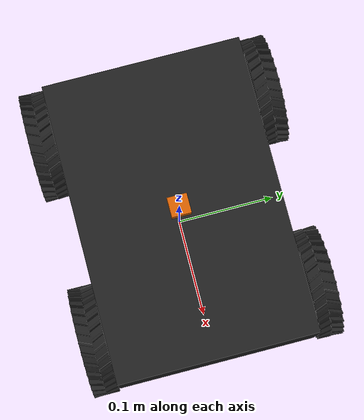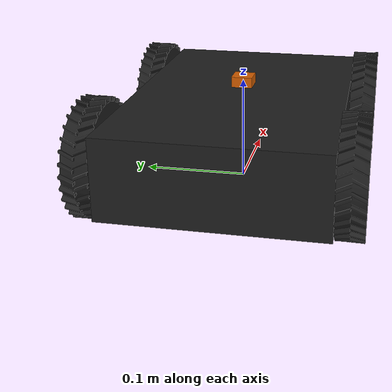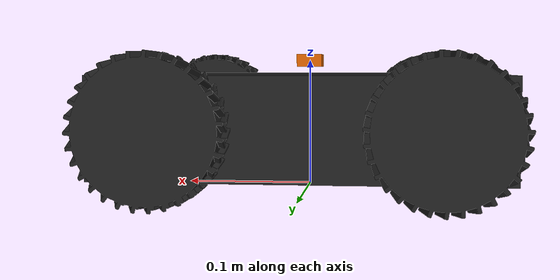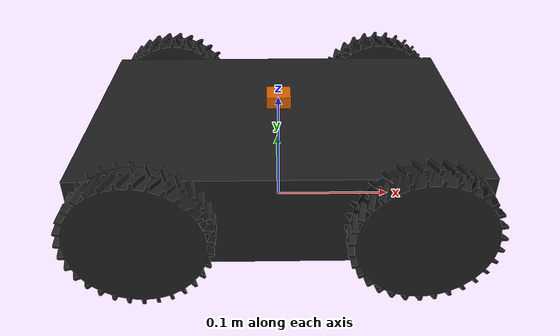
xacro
<?xml version="1.0" ?>

<robot name="mobile_robot" xmlns:xacro="http://www.ros.org/wiki/xacro">

 <xacro:include filename="$(find ros_control)/urdf/mobile_robot_advanced/gazebo_tag.xacro" />
 <xacro:include filename="$(find ros_control)/urdf/mobile_robot_advanced/links_joints.xacro" />

    <ros_3D_mesh name="base_link"
              origin_rpy="0 0 0" origin_xyz="0 0 0"
              mass="5.66307829279757"
              ixx="0.0222241816470158" ixy="1.71982458995108E-18" ixz="4.71600220102887E-19"
              iyy="0.0465826797680732" iyz="4.54535736654549E-19"
              izz="0.0633261951991863"
              meshfile="package://ros_control/meshes/mobile_robot/base_link.STL"
              meshscale="1 1 1" />

    <ros_joint name="front_left_joint" type="continuous"
           axis_xyz="0 1 0"
           origin_xyz="0.1016 0.1143 0.051160641551097"
           origin_rpy="0 0 0"
           parent="base_link" child="front_left_wheel"
           effort="10"
           velocity="1"
           damping="5"
           friction="1"/>

    <ros_3D_mesh name="front_left_wheel"
              origin_xyz="0 0 0"
            origin_rpy="0 0 0"
              mass="0.258483573203574"
              ixx="0.000189262516241649"
            ixy="1.19131585881481E-16"
            ixz="-4.74543000838003E-16"
            iyy="0.000350721870329167"
            iyz="2.66946074577865E-16"
            izz="0.000189262516241838"
              meshfile="package://ros_control/meshes/mobile_robot/front_left_wheel.STL"
              meshscale="1 1 1" />

    <ros_joint name="front_right_joint" type="continuous"
           axis_xyz="0 1 0"
           origin_xyz="0.1016 -0.1143 0.051160641551097"
           origin_rpy="0 0 0"
           parent="base_link" child="front_right_wheel"
           effort="10"
           velocity="1"
           damping="5"
           friction="1"/>

    <ros_3D_mesh name="front_right_wheel"
              origin_xyz="0 0 0"
            origin_rpy="0 0 0"
              mass="0.258483573203574"
              ixx="0.000189262516242037"
            ixy="2.3312284814222E-16"
            ixz="-3.94183401690999E-16"
            iyy="0.000350721870329169"
            iyz="1.76440825004407E-16"
            izz="0.000189262516241465"
              meshfile="package://ros_control/meshes/mobile_robot/front_right_wheel.STL"
              meshscale="1 1 1" />

    <ros_joint name="back_left_joint" type="continuous"
           axis_xyz="0 1 0"
           origin_xyz="-0.1016 0.1143 0.051160641551097"
           origin_rpy="0 0 0"
           parent="base_link" child="back_left_wheel"
           effort="10"
           velocity="1"
           damping="5"
           friction="1"/>

    <ros_3D_mesh name="back_left_wheel"
              origin_xyz="0 0 0"
            origin_rpy="0 0 0"
              mass="0.258483573203574"
              ixx="0.000189262516241906"
            ixy="4.1157050314185E-17"
            ixz="-4.70201546785752E-16"
            iyy="0.000350721870329123"
            iyz="2.94676610981564E-16"
            izz="0.00018926251624155"
              meshfile="package://ros_control/meshes/mobile_robot/back_left_wheel.STL"
              meshscale="1 1 1" />

    <ros_joint name="back_right_joint" type="continuous"
           axis_xyz="0 1 0"
           origin_xyz="-0.1016 -0.1143 0.051160641551097"
           origin_rpy="0 0 0"
           parent="base_link" child="back_right_wheel"
           effort="10"
           velocity="1"
           damping="5"
           friction="1"/>

      <ros_3D_mesh name="back_right_wheel"
              origin_xyz="0 0 0"
            origin_rpy="0 0 0"
              mass="0.258483573203574"
              ixx="0.000189262516241685"
            ixy="1.02584447394406E-16"
            ixz="4.9066877944318E-16"
            iyy="0.000350721870329138"
            iyz="-2.76945192048971E-16"
            izz="0.000189262516241772"
              meshfile="package://ros_control/meshes/mobile_robot/back_right_wheel.STL"
              meshscale="1 1 1" />

    <ros_box name="imu_link"
              origin_rpy="0 0 0" origin_xyz="0 0 0"
              mass="0.28"
               ixx="4.1595"
             ixy="-5.4696E-07"
             ixz="2.4978E-06"
             iyy="4.1595"
             iyz="-0.00010027"
             izz="0.31998"
               size="0.02 0.02 0.01" />

    <ros_joint name="base_link_to_imu" type="fixed"
           axis_xyz="0 0 0"
           origin_xyz="0 0 0.10"
           origin_rpy="0 0 0"
           parent="base_link" child="imu_link"
           effort="10"
           velocity="1"
           damping="5"
           friction="1"/>

</robot>

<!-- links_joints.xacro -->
<robot xmlns:xacro="http://www.ros.org/wiki/xacro">

<xacro:macro name="ros_box" params="name origin_xyz origin_rpy size mass ixx ixy ixz iyy iyz izz">
    <link name="${name}">
      <inertial>
        <mass value="${mass}" />
        <origin rpy="${origin_rpy}" xyz="${origin_xyz}" />
        <inertia ixx="${ixx}" ixy="${ixy}" ixz="${ixz}" iyy="${iyy}" iyz="${iyz}" izz="${izz}" />
      </inertial>
      <collision>
        <origin rpy="${origin_rpy}" xyz="${origin_xyz}" />
        <geometry>
          <box size="${size}" />
        </geometry>
      </collision>
      <visual>
        <origin rpy="${origin_rpy}" xyz="${origin_xyz}" />
        <geometry>
          <box size="${size}" />
        </geometry>
      </visual>
    </link>
  </xacro:macro>

 <xacro:macro name="ros_joint" params="name type axis_xyz origin_rpy origin_xyz parent child effort velocity damping friction">
    <joint name="${name}" type="${type}">
      <axis xyz="${axis_xyz}" />

      <limit effort="${effort}" velocity="${velocity}"/>
      <joint_properties damping="${damping}" friction="${friction}"/>
      <origin rpy="${origin_rpy}" xyz="${origin_xyz}" />
      <parent link="${parent}" />
      <child link="${child}" />
    </joint>
  </xacro:macro>

<xacro:macro name="ros_3D_mesh" params="name origin_xyz origin_rpy meshfile meshscale mass ixx ixy ixz iyy iyz izz">
    <link name="${name}">
      <inertial>
        <mass value="${mass}" />
        <origin rpy="${origin_rpy}" xyz="${origin_xyz}" />
        <inertia ixx="${ixx}" ixy="${ixy}" ixz="${ixz}" iyy="${iyy}" iyz="${iyz}" izz="${izz}" />
      </inertial>

      <collision>
        <origin rpy="${origin_rpy}" xyz="${origin_xyz}" />
        <geometry>
          <mesh filename="${meshfile}" scale="${meshscale}"/>
        </geometry>
      </collision>

      <visual>
        <origin rpy="${origin_rpy}" xyz="${origin_xyz}" />
        <geometry>
          <mesh filename="${meshfile}" scale="${meshscale}"/>
        </geometry>
        <material name="light_black"/>
      </visual>
    </link>
  </xacro:macro>

</robot>
